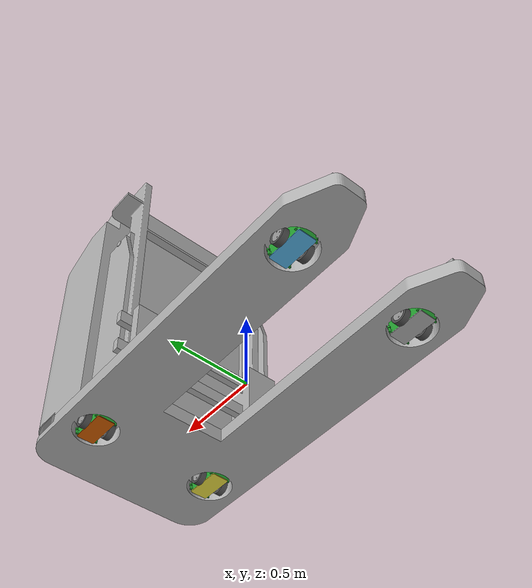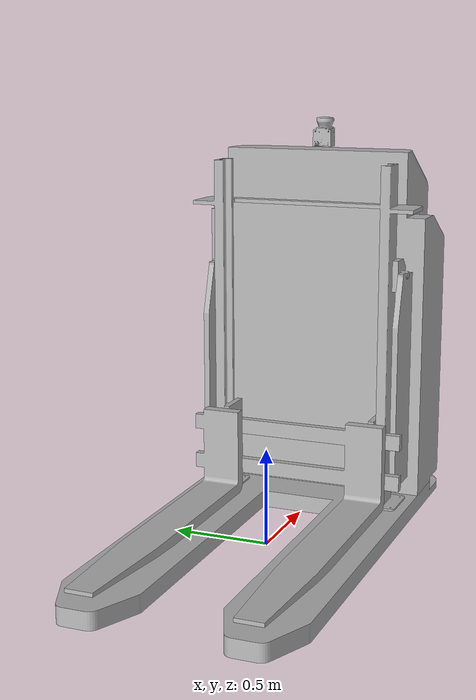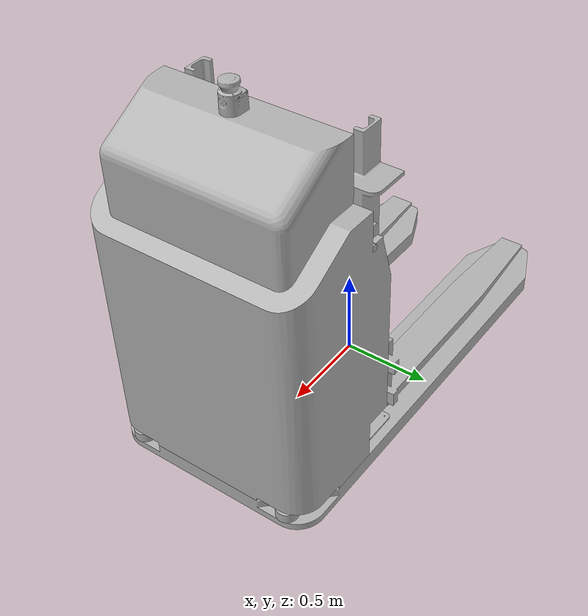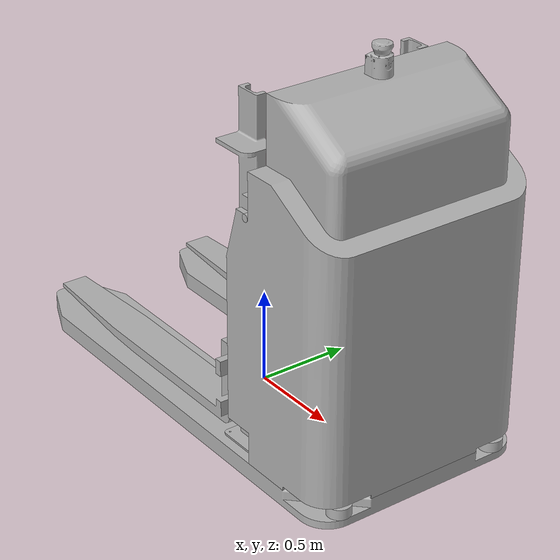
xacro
<?xml version="1.0" ?>
<robot xmlns:xacro="http://www.ros.org/wiki/xacro" name="agv_forklift">

  <xacro:include filename="$(find agv_forklift_description)/urdf/materials.xacro"/>
  <xacro:include filename="$(find agv_forklift_description)/urdf/agv_forklift.gazebo.xacro"/>
  <xacro:include filename="$(find agv_forklift_description)/urdf/wheels.urdf.xacro"/>
  <xacro:include filename="$(find agv_forklift_description)/urdf/agv_forklift.transmission.xacro"/>
  <xacro:include filename="$(find agv_forklift_description)/urdf/lidar.urdf.xacro"/>
  <!-- The links -->
  <link name="base_link"/>

  <link name="chassis_link">
    <inertial>
      <origin xyz="-1.113481469298291 0.0 0.05983225879940115" rpy="0 0 0"/>
      <mass value="491.1554933023608"/>
      <inertia ixx="72.474974" iyy="237.962734" izz="309.767489" ixy="-0.0" iyz="0.0" ixz="0.212334"/>
    </inertial>
    <visual>
      <origin xyz="0 0 0" rpy="0 0 0"/>
      <geometry>
        <mesh filename="package://agv_forklift_description/meshes/base_link_larger.stl" scale="0.001 0.001 0.001"/>
      </geometry>
      <material name="silver"/>
    </visual>
    <collision>
      <origin xyz="0 0 0" rpy="0 0 0"/>
      <geometry>
        <mesh filename="package://agv_forklift_description/meshes/base_link_larger.stl" scale="0.001 0.001 0.001"/>
      </geometry>
    </collision>
  </link>

  <link name="down_lidar_link_right">
    <inertial>
      <origin xyz="1.717830333536341e-08 -1.7178007793994254e-08 0.027500000000000156" rpy="0 0 0"/>
      <mass value="4.882977461474621"/>
      <inertia ixx="0.005626" iyy="0.005626" izz="0.008789" ixy="-0.0" iyz="0.0" ixz="-0.0"/>
    </inertial>
    <visual>
      <origin xyz="0.043934 0.556066 -0.055" rpy="0 0 0"/>
      <geometry>
        <mesh filename="package://agv_forklift_description/meshes/down_lidar_link_1.stl" scale="0.001 0.001 0.001"/>
      </geometry>
      <material name="silver"/>
    </visual>
    <collision>
      <origin xyz="0.043934 0.556066 -0.055" rpy="0 0 0"/>
      <geometry>
        <mesh filename="package://agv_forklift_description/meshes/down_lidar_link_1.stl" scale="0.001 0.001 0.001"/>
      </geometry>
    </collision>
  </link>

  <link name="down_lidar_link_left">
    <inertial>
      <origin xyz="1.717830333536341e-08 -1.7178007793994254e-08 0.027500000000000156" rpy="0 0 0"/>
      <mass value="4.882977461474621"/>
      <inertia ixx="0.005626" iyy="0.005626" izz="0.008789" ixy="-0.0" iyz="0.0" ixz="-0.0"/>
    </inertial>
    <visual>
      <origin xyz="0.043934 0.556066 -0.055" rpy="0 0 0"/>
      <geometry>
        <mesh filename="package://agv_forklift_description/meshes/down_lidar_link_1.stl" scale="0.001 0.001 0.001"/>
      </geometry>
      <material name="silver"/>
    </visual>
    <collision>
      <origin xyz="0.043934 0.556066 -0.055" rpy="0 0 0"/>
      <geometry>
        <mesh filename="package://agv_forklift_description/meshes/down_lidar_link_1.stl" scale="0.001 0.001 0.001"/>
      </geometry>
    </collision>
  </link>

  <link name="battery_link">
    <inertial>
      <origin xyz="-0.1500000000001046 -1.6195933483231783e-13 0.15000000000000013" rpy="0 0 0"/>
      <mass value="38.0508105855631"/>
      <inertia ixx="0.790005" iyy="0.569267" izz="0.78851" ixy="-0.0" iyz="0.0" ixz="0.0"/>
    </inertial>
    <visual>
      <origin xyz="0.0 -0.0 -0.105" rpy="0 0 0"/>
      <geometry>
        <mesh filename="package://agv_forklift_description/meshes/battery_link_1.stl" scale="0.001 0.001 0.001"/>
      </geometry>
      <material name="silver"/>
    </visual>
    <collision>
      <origin xyz="0.0 -0.0 -0.105" rpy="0 0 0"/>
      <geometry>
        <mesh filename="package://agv_forklift_description/meshes/battery_link_1.stl" scale="0.001 0.001 0.001"/>
      </geometry>
    </collision>
  </link>

  <link name="forklift_body_link">
    <inertial>
      <origin xyz="-0.3653016890644773 -3.642871057276427e-13 0.9701883309105319" rpy="0 0 0"/>
      <mass value="423.98667881089364"/>
      <inertia ixx="195.921423" iyy="145.204493" izz="100.919348" ixy="0.0" iyz="0.0" ixz="-4.760868"/>
    </inertial>
    <visual>
      <origin xyz="0.0 -0.0 -0.105" rpy="0 0 0"/>
      <geometry>
        <mesh filename="package://agv_forklift_description/meshes/AGV_forklift_body_link_v1_1.stl" scale="0.001 0.001 0.001"/>
      </geometry>
      <material name="silver"/>
    </visual>
    <collision>
      <origin xyz="0.0 -0.0 -0.105" rpy="0 0 0"/>
      <geometry>
        <mesh filename="package://agv_forklift_description/meshes/AGV_forklift_body_link_v1_1.stl" scale="0.001 0.001 0.001"/>
      </geometry>
    </collision>
  </link>

  <link name="beam_link">
    <inertial>
      <origin xyz="-0.0493621787991847 -0.5432838605116257 -0.24347605881501466" rpy="0 0 0"/>
      <mass value="50.40618620332635"/>
      <inertia ixx="24.864729" iyy="14.359728" izz="10.856123" ixy="0.074298" iyz="0.408483" ixz="-0.392199"/>
    </inertial>
    <visual>
      <origin xyz="0.65 -0.51 -1.325" rpy="0 0 0"/>
      <geometry>
        <mesh filename="package://agv_forklift_description/meshes/beam_link_v1_1.stl" scale="0.001 0.001 0.001"/>
      </geometry>
      <material name="silver"/>
    </visual>
    <collision>
      <origin xyz="0.65 -0.51 -1.325" rpy="0 0 0"/>
      <geometry>
        <mesh filename="package://agv_forklift_description/meshes/beam_link_v1_1.stl" scale="0.001 0.001 0.001"/>
      </geometry>
    </collision>
  </link>

  <link name="fork_link">
    <inertial>
      <origin xyz="-0.6484229539416837 0.4723008933333786 -1.6470003187088946" rpy="0 0 0"/>
      <mass value="36.22311207175414"/>
      <inertia ixx="6.3839107" iyy="8.782671" izz="13.8209861" ixy="-0.0000165" iyz="-8.9e-06" ixz="-1.4023649"/>
    </inertial>
    <visual>
      <origin xyz="0.575 0.4673 -1.885" rpy="0 0 0"/>
      <geometry>
        <mesh filename="package://agv_forklift_description/meshes/AGV_forklift_fork_link_v1_1.stl" scale="0.001 0.001 0.001"/>
      </geometry>
      <material name="silver"/>
    </visual>
    <collision>
      <origin xyz="0.575 0.4673 -1.885" rpy="0 0 0"/>
      <geometry>
        <mesh filename="package://agv_forklift_description/meshes/AGV_forklift_fork_link_v1_1.stl" scale="0.001 0.001 0.001"/>
      </geometry>
    </collision>
  </link>

  <xacro:wheel_macro direction="front_left">
    <container>
      <joint name="front_left_whole_rotate_joint" type="continuous">
        <origin xyz="-0.416667 0.4 0.1" rpy="0 0 0"/>
        <parent link="chassis_link"/>
        <child link="front_left_wheel_body_link"/>
        <axis xyz="0.0 0.0 -1.0"/>
      </joint>
    </container>
    <trans_container>
      <transmission name="front_left_whole_rotate_joint_trans">
        <type>transmission_interface/SimpleTransmission</type>
        <actuator name="front_left_whole_rotate_joint_motor">
          <mechanicalReduction>1</mechanicalReduction>
        </actuator>
        <joint name="front_left_whole_rotate_joint">
          <hardwareInterface>hardware_interface/EffortJointInterface</hardwareInterface>
        </joint>
      </transmission>
    </trans_container>
  </xacro:wheel_macro>

  <xacro:wheel_macro direction="front_right">
    <container>
      <joint name="front_right_whole_rotate_joint" type="continuous">
        <origin xyz="-0.416667 -0.4 0.1" rpy="0 0 0"/>
        <parent link="chassis_link"/>
        <child link="front_right_wheel_body_link"/>
        <axis xyz="0.0 0.0 -1.0"/>
      </joint>
    </container>
    <trans_container>
      <transmission name="front_right_whole_rotate_joint_trans">
        <type>transmission_interface/SimpleTransmission</type>
        <actuator name="front_right_whole_rotate_joint_motor">
          <mechanicalReduction>1</mechanicalReduction>
        </actuator>
        <joint name="front_right_whole_rotate_joint">
          <hardwareInterface>hardware_interface/EffortJointInterface</hardwareInterface>
        </joint>
      </transmission>
    </trans_container>
  </xacro:wheel_macro>

  <xacro:wheel_macro direction="back_left">
    <container>
      <joint name="back_left_whole_rotate_joint" type="continuous">
        <origin xyz="-2.0833337 0.4 0.1" rpy="0 0 0"/>
        <parent link="chassis_link"/>
        <child link="back_left_wheel_body_link"/>
        <axis xyz="0.0 0.0 -1.0"/>
      </joint>
    </container>
    <trans_container>
      <transmission name="back_left_whole_rotate_joint_trans">
        <type>transmission_interface/SimpleTransmission</type>
        <actuator name="back_left_whole_rotate_joint_motor">
          <mechanicalReduction>1</mechanicalReduction>
        </actuator>
        <joint name="back_left_whole_rotate_joint">
          <hardwareInterface>hardware_interface/EffortJointInterface</hardwareInterface>
        </joint>
      </transmission>
    </trans_container>
  </xacro:wheel_macro>

  <xacro:wheel_macro direction="back_right">
    <container>
      <joint name="back_right_whole_rotate_joint" type="continuous">
        <origin xyz="-2.0833337 -0.4 0.1" rpy="0 0 0"/>
        <parent link="chassis_link"/>
        <child link="back_right_wheel_body_link"/>
        <axis xyz="0.0 0.0 -1.0"/>
      </joint>
    </container>
    <trans_container>
      <transmission name="back_right_whole_rotate_joint_trans">
        <type>transmission_interface/SimpleTransmission</type>
        <actuator name="back_right_whole_rotate_joint_motor">
          <mechanicalReduction>1</mechanicalReduction>
        </actuator>
        <joint name="back_right_whole_rotate_joint">
          <hardwareInterface>hardware_interface/EffortJointInterface</hardwareInterface>
        </joint>
      </transmission>
    </trans_container>
  </xacro:wheel_macro>

  <link name="top_lidar_link">
    <inertial>
      <origin xyz="-0.05524254507663745 9.861407182463684e-05 0.06748274346056338" rpy="0 0 0"/>
      <mass value="9.196970574806967"/>
      <inertia ixx="0.022443" iyy="0.022665" izz="0.012481" ixy="6.4e-05" iyz="6.1e-05" ixz="-0.0008"/>
    </inertial>
    <visual>
      <origin xyz="0.35 0.0 -1.94" rpy="0 0 0"/>
      <geometry>
        <mesh filename="package://agv_forklift_description/meshes/top_lidar_link_1.stl" scale="0.001 0.001 0.001"/>
      </geometry>
      <material name="silver"/>
    </visual>
    <collision>
      <origin xyz="0.35 0.0 -1.94" rpy="0 0 0"/>
      <geometry>
        <mesh filename="package://agv_forklift_description/meshes/top_lidar_link_1.stl" scale="0.001 0.001 0.001"/>
      </geometry>
    </collision>
  </link>

  <!-- The joints -->
  <joint name="base_chassis_joint" type="fixed">
    <origin xyz="1.25 0 0" rpy="0 0 0"/>
    <parent link="base_link"/>
    <child link="chassis_link"/>
  </joint>

  <joint name="base_down_lidar_right_joint" type="fixed">
    <origin xyz="-0.055934 -0.456066 0.055" rpy="0 0 0"/>
    <parent link="chassis_link"/>
    <child link="down_lidar_link_right"/>
  </joint>

  <joint name="base_down_lidar_left_joint" type="fixed">
    <origin xyz="-0.055934 0.456066 0.055" rpy="0 0 0"/>
    <parent link="chassis_link"/>
    <child link="down_lidar_link_left"/>
  </joint>

  <joint name="base_battery_joint" type="fixed">
    <origin xyz="-0.05 0.0 0.105" rpy="0 0 0"/>
    <parent link="chassis_link"/>
    <child link="battery_link"/>
  </joint>

  <joint name="base_body_joint" type="fixed">
    <origin xyz="0.0 0.0 0.105" rpy="0 0 0"/>
    <parent link="chassis_link"/>
    <child link="forklift_body_link"/>
  </joint>

  <joint name="body_beam_joint" type="fixed">
    <origin xyz="-0.65 0.51 1.22" rpy="0 0 0"/>
    <parent link="forklift_body_link"/>
    <child link="beam_link"/>
  </joint>

  <joint name="beam_fork_slide_joint" type="prismatic">
    <origin xyz="0.675 -0.4732 1.890" rpy="0 0 0"/>
    <parent link="base_link"/>
    <child link="fork_link"/>
    <axis xyz="0.0 0.0 1.0"/>
    <!-- TODO: effort fill -->
    <limit upper="1.6" lower="0.0" effort="1000" velocity="1"/>
  </joint>

  <joint name="body_lidar_joint" type="fixed">
    <origin xyz="-0.35 -0.0 1.845" rpy="0 0 0"/>
    <parent link="forklift_body_link"/>
    <child link="top_lidar_link"/>
  </joint>

  <!-- The gazebo relevant -->
  <gazebo>
    <plugin name="gazebo_ros_control" filename="libgazebo_ros_control.so">
      <robotNamespace>/forklift_controllers</robotNamespace>
    </plugin>
  </gazebo>

  <xacro:gazebo_common link_name="chassis"
                       color="${black}"
                       mu_1="0.35"
                       mu_2="0.35"
                       k_p="0.0"
                       k_d="0.0"/>
  <xacro:gazebo_common link_name="base_down_lidar_left"
                       color="${indigo}"
                       k_p="0.0"
                       k_d="0.0"/>
  <xacro:gazebo_common link_name="base_down_lidar_right"
                       color="${indigo}"
                       k_p="0.0"
                       k_d="0.0"/>
  <xacro:gazebo_common link_name="battery"
                       color="${silver}"
                       k_p="0.0"
                       k_d="0.0"/>
  <xacro:gazebo_common link_name="forklift_body"
                       color="${blue}"
                       k_p="0.0"
                       k_d="0.0"/>
  <xacro:gazebo_common link_name="beam"
                       color="${silver}"
                       mu_1="0.35"
                       mu_2="0.35"
                       k_p="0.0"
                       k_d="0.0"/>
  <xacro:gazebo_common link_name="fork"
                       color="${black}"
                       mu_1="0.35"
                       mu_2="0.35"
                       k_p="0.0"
                       k_d="0.0"/>
  <xacro:gazebo_common link_name="top_lidar"
                       color="${yellow}"
                       mu_1="0.35"
                       mu_2="0.35"
                       k_p="0.0"
                       k_d="0.0"/>

  <!-- Transmissions -->
  <xacro:forklift_transmission/>

  <!-- Lidar sensor -->
  <xacro:lidar_top/>

</robot>

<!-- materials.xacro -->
<robot name="agv_forklift" xmlns:xacro="http://www.ros.org/wiki/xacro" >

  <!-- For gazebo -->>
  <xacro:property name="silver" value="Gazebo/Grey"/>
  <xacro:property name="black" value="Gazebo/DarkGrey"/>
  <xacro:property name="indigo" value="Gazebo/Indigo"/>
  <xacro:property name="blue" value="Gazebo/Blue"/>
  <xacro:property name="green" value="Gazebo/Green"/>
  <xacro:property name="green_glow" value="Gazebo/GreenGlow"/>
  <xacro:property name="yellow" value="Gazebo/Yellow"/>

  <material name="silver">
    <color rgba="0.700 0.700 0.700 1.000"/>
  </material>

</robot>

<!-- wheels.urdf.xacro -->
<robot xmlns:xacro="http://www.ros.org/wiki/xacro">

  <xacro:include filename="$(find agv_forklift_description)/urdf/agv_forklift.gazebo.xacro" />

  <xacro:macro name="wheel_macro" params="direction **content **transmission">
    <!-- Links in the wheel -->
    <link name="${direction}_wheel_left_tyre_link">
      <inertial>
        <origin xyz="3.333335224509071e-07 -0.018500000000241157 3.469446951953614e-17" rpy="0 0 0"/>
        <mass value="0.1778455601197185"/>
        <inertia ixx="0.000186" iyy="0.000331" izz="0.000186" ixy="-0.0" iyz="0.0" ixz="0.0"/>
      </inertial>
      <visual>
        <origin xyz="0.416667 0.308 -0.05" rpy="0 0 0"/>
        <geometry>
          <mesh filename="package://agv_forklift_description/meshes/wheel_right_tyre_link_1.stl" scale="0.001 0.001 0.001"/>
        </geometry>
      </visual>
      <collision>
        <origin xyz="0.416667 0.308 -0.05" rpy="0 0 0"/>
        <geometry>
          <mesh filename="package://agv_forklift_description/meshes/wheel_right_tyre_link_1.stl" scale="0.001 0.001 0.001"/>
        </geometry>
      </collision>
    </link>

    <link name="${direction}_wheel_left_side_link">
      <inertial>
        <origin xyz="0.00010675169060286871 0.02309161955413208 -3.6442381300544335e-06" rpy="0 0 0"/>
        <mass value="1.1123570626253076"/>
        <inertia ixx="0.000468" iyy="0.000678" izz="0.00047" ixy="-1e-06" iyz="0.0" ixz="0.0"/>
      </inertial>
      <visual>
        <origin xyz="0.416667 0.35 -0.05" rpy="0 0 0"/>
        <geometry>
          <mesh filename="package://agv_forklift_description/meshes/wheel_right_side_link_1.stl" scale="0.001 0.001 0.001"/>
        </geometry>
      </visual>
      <collision>
        <origin xyz="0.416667 0.35 -0.05" rpy="0 0 0"/>
        <geometry>
          <mesh filename="package://agv_forklift_description/meshes/wheel_right_side_link_1.stl" scale="0.001 0.001 0.001"/>
        </geometry>
      </collision>
    </link>

    <link name="${direction}_wheel_right_tyre_link">
      <inertial>
        <origin xyz="3.333336075495019e-07 0.01849999999975882 -1.1102230246251565e-16" rpy="0 0 0"/>
        <mass value="0.1778455601197185"/>
        <inertia ixx="0.000186" iyy="0.000331" izz="0.000186" ixy="-0.0" iyz="0.0" ixz="0.0"/>
      </inertial>
      <visual>
        <origin xyz="0.416667 0.492 -0.05" rpy="0 0 0"/>
        <geometry>
          <mesh filename="package://agv_forklift_description/meshes/wheel_left_tyre_link_1.stl" scale="0.001 0.001 0.001"/>
        </geometry>
      </visual>
      <collision>
        <origin xyz="0.416667 0.492 -0.05" rpy="0 0 0"/>
        <geometry>
          <mesh filename="package://agv_forklift_description/meshes/wheel_left_tyre_link_1.stl" scale="0.001 0.001 0.001"/>
        </geometry>
      </collision>
    </link>

    <link name="${direction}_wheel_right_side_link">
      <inertial>
        <origin xyz="3.3333352045250564e-07 -0.0230305917755671 -1.1796119636642288e-16" rpy="0 0 0"/>
        <mass value="1.1064383020659443"/>
        <inertia ixx="0.000467" iyy="0.000676" izz="0.000467" ixy="-0.0" iyz="0.0" ixz="0.0"/>
      </inertial>
      <visual>
        <origin xyz="0.416667 0.45 -0.05" rpy="0 0 0"/>
        <geometry>
          <mesh filename="package://agv_forklift_description/meshes/wheel_left_side_link_1.stl" scale="0.001 0.001 0.001"/>
        </geometry>
      </visual>
      <collision>
        <origin xyz="0.416667 0.45 -0.05" rpy="0 0 0"/>
        <geometry>
          <mesh filename="package://agv_forklift_description/meshes/wheel_left_side_link_1.stl" scale="0.001 0.001 0.001"/>
        </geometry>
      </collision>
    </link>

    <link name="${direction}_wheel_body_link">
      <inertial>
        <origin xyz="3.3333356391773705e-07 -2.4108492979735274e-13 -0.039424239790861335" rpy="0 0 0"/>
        <mass value="4.576097233565504"/>
        <inertia ixx="0.010041" iyy="0.019675" izz="0.02442" ixy="-0.0" iyz="0.0" ixz="0.0"/>
      </inertial>
      <visual>
        <origin xyz="0.416667 0.4 -0.1" rpy="0 0 0"/>
        <geometry>
          <mesh filename="package://agv_forklift_description/meshes/wheel_body_link_v1_1.stl" scale="0.001 0.001 0.001"/>
        </geometry>
      </visual>
      <collision>
        <origin xyz="0.416667 0.4 -0.1" rpy="0 0 0"/>
        <geometry>
          <mesh filename="package://agv_forklift_description/meshes/wheel_body_link_v1_1.stl" scale="0.001 0.001 0.001"/>
        </geometry>
      </collision>
    </link>

    <link name="${direction}_wheel_body_wheel_lid_link">
      <inertial>
        <origin xyz="0.10200033333356417 0.046999999999758846 -0.0025000000000000334" rpy="0 0 0"/>
        <mass value="0.9476936807458183"/>
        <inertia ixx="0.000954" iyy="0.003808" izz="0.004757" ixy="-0.0" iyz="0.0" ixz="-0.0"/>
      </inertial>
      <visual>
        <origin xyz="0.518667 0.447 -0.02" rpy="0 0 0"/>
        <geometry>
          <mesh filename="package://agv_forklift_description/meshes/wheel_body_wheel_lid_link_v1_1.stl" scale="0.001 0.001 0.001"/>
        </geometry>
      </visual>
      <collision>
        <origin xyz="0.518667 0.447 -0.02" rpy="0 0 0"/>
        <geometry>
          <mesh filename="package://agv_forklift_description/meshes/wheel_body_wheel_lid_link_v1_1.stl" scale="0.001 0.001 0.001"/>
        </geometry>
      </collision>
    </link>

    <!-- Joints in the wheel -->
    <joint name="${direction}_left_tyre_joint" type="fixed">
      <origin xyz="0.0 0.042 0.0" rpy="0 0 0"/>
      <parent link="${direction}_wheel_left_side_link"/>
      <child link="${direction}_wheel_left_tyre_link"/>
    </joint>

    <joint name="${direction}_left_rotate_joint" type="continuous">
      <origin xyz="0.0 0.055 -0.05" rpy="0 0 0"/>
      <parent link="${direction}_wheel_body_link"/>
      <child link="${direction}_wheel_left_side_link"/>
      <axis xyz="0.0 1.0 0.0"/>
    </joint>

    <joint name="${direction}_right_tyre_joint" type="fixed">
      <origin xyz="0.0 -0.042 0.0" rpy="0 0 0"/>
      <parent link="${direction}_wheel_right_side_link"/>
      <child link="${direction}_wheel_right_tyre_link"/>
    </joint>

    <joint name="${direction}_right_rotate_joint" type="continuous">
      <origin xyz="0.0 -0.055 -0.05" rpy="0 0 0"/>
      <parent link="${direction}_wheel_body_link"/>
      <child link="${direction}_wheel_right_side_link"/>
      <axis xyz="0.0 1.0 0.0"/>
    </joint>

    <joint name="${direction}_wheel_lid_joint" type="fixed">
      <origin xyz="-0.102 -0.047 -0.08" rpy="0 0 0"/>
      <parent link="${direction}_wheel_body_link"/>
      <child link="${direction}_wheel_body_wheel_lid_link"/>
    </joint>

    <xacro:insert_block name="content"/>
    <xacro:insert_block name="transmission"/>

    <!-- Gazebo -->
    <xacro:gazebo_common link_name="${direction}_wheel_left_tyre"
                         color="${black}"
                         mu_1="0.3"
                         mu_2="0.3"
                         k_p="10000000.0"
                         k_d="1.0"/>
    <xacro:gazebo_common link_name="${direction}_wheel_right_tyre"
                         color="${black}"
                         mu_1="0.3"
                         mu_2="0.3"
                         k_p="10000000.0"
                         k_d="1.0"/>
    <xacro:gazebo_common link_name="${direction}_wheel_left_side"
                         color="${silver}"
                         k_p="10000000.0"
                         k_d="1.0"/>
    <xacro:gazebo_common link_name="${direction}_wheel_right_side"
                         color="${silver}"
                         k_p="10000000.0"
                         k_d="1.0"/>
    <xacro:gazebo_common link_name="${direction}_wheel_body"
                         color="${green}"
                         k_p="10000000.0"
                         k_d="1.0"/>
    <xacro:gazebo_common link_name="{direction}_wheel_body_wheel_lid"
                         color="${green}"
                         k_p="10000000.0"
                         k_d="1.0"/>
    <!-- Transmissions -->
    <transmission name="${direction}_left_rotate_joint_trans">
      <type>transmission_interface/SimpleTransmission</type>
      <actuator name="${direction}_left_rotate_joint_motor">
        <mechanicalReduction>1</mechanicalReduction>
      </actuator>
      <joint name="${direction}_left_rotate_joint">
        <hardwareInterface>hardware_interface/EffortJointInterface</hardwareInterface>
      </joint>
    </transmission>

    <transmission name="${direction}_right_rotate_joint_trans">
      <type>transmission_interface/SimpleTransmission</type>
      <actuator name="${direction}_right_rotate_joint_motor">
        <mechanicalReduction>1</mechanicalReduction>
      </actuator>
      <joint name="${direction}_right_rotate_joint">
        <hardwareInterface>hardware_interface/EffortJointInterface</hardwareInterface>
      </joint>
    </transmission>
  </xacro:macro>

</robot>
